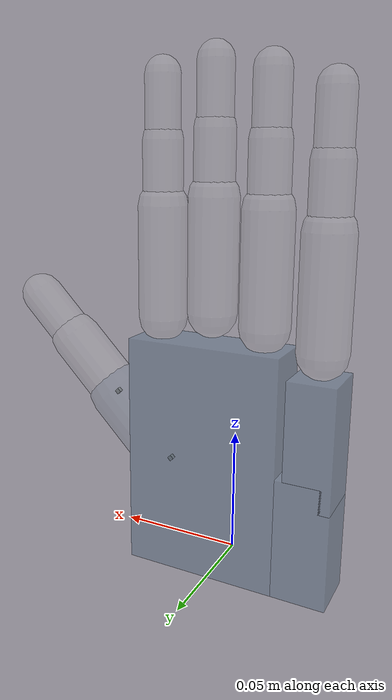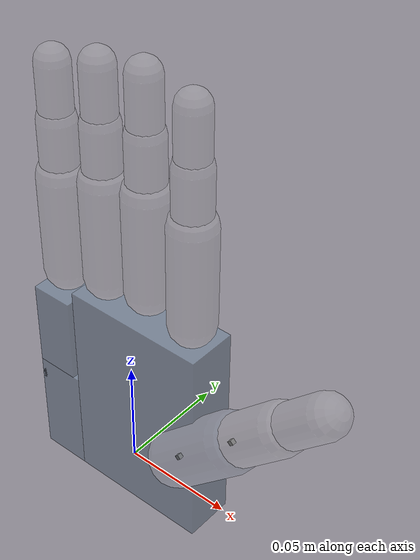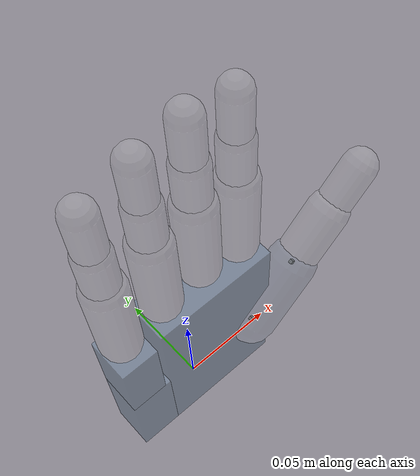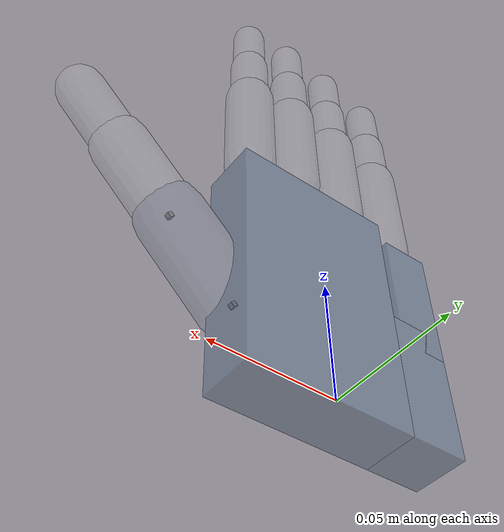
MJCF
<mujoco model="MuJoCo Model">
    <compiler angle="radian" meshdir="meshes " texturedir="textures" />
    <option apirate="200" iterations="20"/>
     <visual>
        <map force="0.1" fogend="5" />
    </visual>
    <default class="main">
        <default class="robot0:asset_class">
            <joint damping="0.2" frictionloss="0.01" />
            <geom friction="1 0.005 0.001" margin="0.0005" />
            <site rgba="0.4 0.9 0.4 1" />
            <position kp="2" kv="0.02"/>
        </default>
        <default class="robot0:D_Touch">
            <site size="0.009 0.004 0.013" group="4" type="box" rgba="0.8 0.8 0.8 0.15" />
        </default>
        <default class="robot0:DC_Hand">
            <geom conaffinity="0" group="1" material="robot0:MatColl" rgba="0.8 0.8 0.8 0.1"/>
        </default>
        <default class="robot0:free">
            <joint type="free" />
        </default>

      <default class="wrist">
        <joint damping="0.5"/>
        <default class="wrist_r_y">
          <joint axis="0 1 0" range="-3.14 3.14"/>
          <position kp="20" ctrlrange="-3.14 3.14" forcerange="-20 20"/>
        </default>
        <default class="wrist_r_x">
          <joint axis="1 0 0" range="-3.14 3.14"/>
          <position kp="20" ctrlrange="-3.14 3.14" forcerange="-20 20"/>
        </default>
        <default class="wrist_r_z">
          <joint axis="0 0 1" range="-3.14 3.14"/>
          <position kp="20" ctrlrange="-3.14 3.14" forcerange="-20 20"/>
        </default>
        <default class="wrist_t_x">
          <joint axis="1 0 0" range="-2 2" type = "slide" damping="1"/>
          <position kp="100" kv = "10" ctrlrange="-2 2" forcerange="-40 40"/>
        </default>
        <default class="wrist_t_y">
          <joint axis="0 1 0" range="-2 2" type = "slide" damping="1"/>
          <position kp="100" kv = "10" ctrlrange="-2 2" forcerange="-40 40"/>
        </default>
        <default class="wrist_t_z">
          <joint axis="0 0 1" range="-2 2" type = "slide" damping="0" />
          <position kp="250" kv = "25" ctrlrange="-2 2" forcerange="-30 30" />
        </default>
      </default>

      <default class="thumb">
        <default class="thbase">
          <joint axis="0 0 -1" range="-1.0472 1.0472"/>
          <position kp="0.4" ctrlrange="-1.0472 1.0472" forcerange="-3 3"/>
        </default>
        <default class="thproximal">
          <joint range="0 1.22173"/>
          <position ctrlrange="0 1.22173" forcerange="-2 2"/>
        </default>
        <default class="thhub">
          <joint range="-0.20944 0.20944"/>
          <position kp="0.5" ctrlrange="-0.20944 0.20944"/>
        </default>
        <default class="thmiddle">
          <joint axis="0 -1 0" range="-0.698132 0.698132"/>
          <position kp="1.5" ctrlrange="-0.698132 0.698132"/>
        </default>
        <default class="thdistal">
          <joint range="-0.261799 1.5708"/>
          <position ctrlrange="-0.261799 1.5708"/>
        </default>
      </default>

      <default class="metacarpal">
        <joint axis="0.573576 0 0.819152" range="0 0.785398"/>
        <position ctrlrange="0 0.785398"/>
      </default>
      <default class="knuckle">
        <joint axis="0 -1 0" range="-0.349066 0.349066"/>
        <position ctrlrange="-0.349066 0.349066"/>
      </default>
      <default class="proximal">
        <joint range="-0.261799 1.5708"/>
        <position ctrlrange="-0.261799 1.5708"/>
      </default>
      <default class="middle_distal">
        <joint range="0 1.5708"/>
        <position kp="0.5" ctrlrange="0 3.1415"/>
      </default>

    </default>
    <asset>
        <texture type="skybox" builtin="gradient" rgb1="0.44 0.85 0.56" rgb2="0.46 0.87 0.58" width="32" height="192" />
        <texture type="2d" name="robot0:texplane" builtin="checker" rgb1="0.2 0.3 0.4" rgb2="0.1 0.15 0.2" width="512" height="512" />
        <texture type="cube" name="robot0:texgeom" builtin="flat" mark="cross" rgb1="0.3 0.6 0.5" rgb2="0.3 0.6 0.5" width="127" height="762" />
        <material name="robot0:MatGnd" texture="robot0:texplane" texuniform="true" reflectance="0.5" />
        <material name="robot0:MatColl" specular="1" shininess="0.3" reflectance="0.5" rgba="0.4 0.5 0.6 0.5" />
        <material name="robot0:MatViz" specular="0.75" shininess="0.1" reflectance="0.5" rgba="0.93 0.93 0.93 0.5" />
        <material name="robot0:object" texture="robot0:texgeom" />
        <material name="floor_mat" specular="0" rgba="0.2 0.2 0.2 0" />
        <mesh name="robot0:forearm" file="forearm_electric.obj" />
        <mesh name="robot0:forearm_cvx" file="forearm_electric_cvx.obj" />
        <mesh name="robot0:wrist" file="wrist.obj" scale="0.001 0.001 0.001" />
        <mesh name="robot0:palm" file="palm.obj" scale="0.001 0.001 0.001" />
        <mesh name="robot0:knuckle" file="knuckle.obj" scale="0.001 0.001 0.001" />
        <mesh name="robot0:F3" file="F3.obj" scale="0.001 0.001 0.001" />
        <mesh name="robot0:F2" file="F2.obj" scale="0.001 0.001 0.001" />
        <mesh name="robot0:F1" file="F1.obj" scale="0.001 0.001 0.001" />
        <mesh name="robot0:lfmetacarpal" file="lfmetacarpal.obj" scale="0.001 0.001 0.001" />
        <mesh name="robot0:TH3_z" file="TH3_z.obj" scale="0.001 0.001 0.001" />
        <mesh name="robot0:TH2_z" file="TH2_z.obj" scale="0.001 0.001 0.001" />
        <mesh name="robot0:TH1_z" file="TH1_z.obj" scale="0.001 0.001 0.001" />
    </asset>
    <worldbody>
        <light name="light0" pos="0 1 4" dir="0 0 -1" directional="true" castshadow="false" ambient="0.2 0.2 0.2" diffuse="0.8 0.8 0.8" />
                    <body name="robot0:palm" gravcomp="1">
                        <inertial pos="0.006 0 0.036" quat="0.715833 0.0439898 0.0749825 0.692839" mass="0.3" diaginertia="0.001 0.001 0.001" />
                        <geom name="robot0:C_palm0" class="robot0:DC_Hand" size="0.032 0.0111 0.049" pos="0.011 0 0.038" type="box" rgba="0.4 0.5 0.6 0.5" />
                        <geom name="robot0:C_palm1" class="robot0:DC_Hand" size="0.011 0.0111 0.025" pos="-0.032 0 0.014" type="box" rgba="0.4 0.5 0.6 0.5" />
                        <joint name="ARRt_x" class="wrist_t_x"/>
                        <joint name="ARRt_y" class="wrist_t_y"/>
                        <joint name="ARRt_z" class="wrist_t_z" />
                        <joint name="ARRz" class="wrist_r_z"/>
                        <joint name="ARRy"  class="wrist_r_y"/>
                        <joint name="ARRx" class="wrist_r_x" />

                        <body name="robot0:ffknuckle" pos="0.033 0 0.095" gravcomp="1">
                            <inertial pos="0 0 0" quat="0.520062 0.854102 0.00600072 -0.00300036" mass="0.008" diaginertia="1e-05 1e-05 1e-05" />
                            <joint name="robot0:FFJ3" pos="0 0 0" axis="0 1 0" range="-0.349 0.349" user="1103" class="robot0:asset_class"/>
                            <body name="robot0:ffproximal" pos="0 0 0" gravcomp="1">
                                <inertial pos="0 0 0.023" quat="0.707095 -0.00400054 0.00400054 0.707095" mass="0.014" diaginertia="1e-05 1e-05 1e-05" />
                                <joint name="robot0:FFJ2" pos="0 0 0" axis="1 0 0" range="0 1.571" user="1102" class="robot0:asset_class"/>
                                <geom name="robot0:C_ffproximal" class="robot0:DC_Hand" size="0.01 0.0225" pos="0 0 0.0225" type="capsule" />
                                <body name="robot0:ffmiddle" pos="0 0 0.045" gravcomp="1">
                                    <inertial pos="0 0 0.011" quat="0.707107 0 0 0.707107" mass="0.012" diaginertia="1e-05 1e-05 1e-05" />
                                    <joint name="robot0:FFJ1" pos="0 0 0" axis="1 0 0" range="0 1.571" user="1101" class="robot0:asset_class"/>
                                    <geom name="robot0:C_ffmiddle" class="robot0:DC_Hand" size="0.00805 0.0125" pos="0 0 0.0125" type="capsule" />
                                    <body name="robot0:ffdistal" pos="0 0 0.025" gravcomp="1">
                                        <inertial pos="0 0 0.015" quat="0.7071 -0.00300043 0.00300043 0.7071" mass="0.01" diaginertia="1e-05 1e-05 1e-05" />
                                        <joint name="robot0:FFJ0" pos="0 0 0" axis="1 0 0" range="0 1.571" user="1100" class="robot0:asset_class"/>
                                        <geom name="robot0:C_ffdistal" class="robot0:DC_Hand" size="0.00705 0.012" pos="0 0 0.012" type="capsule" condim="4" />
                                        <site name="robot0:S_fftip" pos="0 0 0.026" group="3" />
                                        <site name="robot0:Tch_fftip" class="robot0:D_Touch" pos="0 -0.004 0.018" />
                                    </body>
                                </body>
                            </body>
                        </body>
                        <body name="robot0:mfknuckle" pos="0.011 0 0.099" gravcomp="1">
                            <inertial pos="0 0 0" quat="0.520062 0.854102 0.00600072 -0.00300036" mass="0.008" diaginertia="1e-05 1e-05 1e-05" />
                            <joint name="robot0:MFJ3" pos="0 0 0" axis="0 1 0" range="-0.349 0.349" user="1107" class="robot0:asset_class"/>
                            <body name="robot0:mfproximal" pos="0 0 0" gravcomp="1">
                                <inertial pos="0 0 0.023" quat="0.707095 -0.00400054 0.00400054 0.707095" mass="0.014" diaginertia="1e-05 1e-05 1e-05" />
                                <joint name="robot0:MFJ2" pos="0 0 0" axis="1 0 0" range="0 1.571" user="1106" class="robot0:asset_class"/>
                                <geom name="robot0:C_mfproximal" class="robot0:DC_Hand" size="0.01 0.0225" pos="0 0 0.0225" type="capsule" />
                                <body name="robot0:mfmiddle" pos="0 0 0.045" gravcomp="1">
                                    <inertial pos="0 0 0.012" quat="0.707107 0 0 0.707107" mass="0.012" diaginertia="1e-05 1e-05 1e-05" />
                                    <joint name="robot0:MFJ1" pos="0 0 0" axis="1 0 0" range="0 1.571" user="1105" class="robot0:asset_class"/>
                                    <geom name="robot0:C_mfmiddle" class="robot0:DC_Hand" size="0.00805 0.0125" pos="0 0 0.0125" type="capsule" />
                                    <body name="robot0:mfdistal" pos="0 0 0.025" gravcomp="1">
                                        <inertial pos="0 0 0.015" quat="0.7071 -0.00300043 0.00300043 0.7071" mass="0.01" diaginertia="1e-05 1e-05 1e-05" />
                                        <joint name="robot0:MFJ0" pos="0 0 0" axis="1 0 0" range="0 1.571" user="1104" class="robot0:asset_class"/>
                                        <geom name="robot0:C_mfdistal" class="robot0:DC_Hand" size="0.00705 0.012" pos="0 0 0.012" type="capsule" condim="4" />
                                        <site name="robot0:S_mftip" pos="0 0 0.026" group="3" />
                                        <site name="robot0:Tch_mftip" class="robot0:D_Touch" pos="0 -0.004 0.018" />
                                    </body>
                                </body>
                            </body>
                        </body>
                        <body name="robot0:rfknuckle" pos="-0.011 0 0.095" gravcomp="1" >
                            <inertial pos="0 0 0" quat="0.520062 0.854102 0.00600072 -0.00300036" mass="0.008" diaginertia="1e-05 1e-05 1e-05" />
                            <joint name="robot0:RFJ3" pos="0 0 0" axis="0 1 0" range="-0.349 0.349" user="1111" class="robot0:asset_class"/>
                            <body name="robot0:rfproximal" pos="0 0 0" gravcomp="1" >
                                <inertial pos="0 0 0.023" quat="0.707095 -0.00400054 0.00400054 0.707095" mass="0.014" diaginertia="1e-05 1e-05 1e-05" />
                                <joint name="robot0:RFJ2" pos="0 0 0" axis="1 0 0" range="0 1.571" user="1110" class="robot0:asset_class"/>
                                <geom name="robot0:C_rfproximal" class="robot0:DC_Hand" size="0.01 0.0225" pos="0 0 0.0225" type="capsule" />
                                <body name="robot0:rfmiddle" pos="0 0 0.045" gravcomp="1">
                                    <inertial pos="0 0 0.012" quat="0.707107 0 0 0.707107" mass="0.012" diaginertia="1e-05 1e-05 1e-05" />
                                    <joint name="robot0:RFJ1" pos="0 0 0" axis="1 0 0" range="0 1.571" user="1109" class="robot0:asset_class"/>
                                    <geom name="robot0:C_rfmiddle" class="robot0:DC_Hand" size="0.00805 0.0125" pos="0 0 0.0125" type="capsule" />
                                    <body name="robot0:rfdistal" pos="0 0 0.025" gravcomp="1">
                                        <inertial pos="0 0 0.015" quat="0.7071 -0.00300043 0.00300043 0.7071" mass="0.01" diaginertia="1e-05 1e-05 1e-05" />
                                        <joint name="robot0:RFJ0" pos="0 0 0" axis="1 0 0" range="0 1.571" user="1108" class="robot0:asset_class"/>
                                        <geom name="robot0:C_rfdistal" class="robot0:DC_Hand" size="0.00705 0.012" pos="0 0 0.012" type="capsule" condim="4" />
                                        <site name="robot0:S_rftip" pos="0 0 0.026" group="3" />
                                        <site name="robot0:Tch_rftip" class="robot0:D_Touch" pos="0 -0.004 0.018" />
                                    </body>
                                </body>
                            </body>
                        </body>
                        <body name="robot0:lfmetacarpal" pos="-0.017 0 0.044" gravcomp="1">
                            <inertial pos="-0.014 0.001 0.014" quat="0.709167 -0.0920216 -0.0630148 0.696164" mass="0.075" diaginertia="1e-05 1e-05 1e-05" />
                            <joint name="robot0:LFJ4" pos="0 0 0" axis="0.570977 0 0.820966" range="0 0.785" user="1116" class="robot0:asset_class"/>
                            <geom name="robot0:C_lfmetacarpal" class="robot0:DC_Hand" size="0.0095 0.0111 0.025" pos="-0.0165 0 0.01" type="box" rgba="0.4 0.5 0.6 0.5" />
                            <body name="robot0:lfknuckle" pos="-0.017 0 0.044" gravcomp="1" >
                                <inertial pos="0 0 0" quat="0.520062 0.854102 0.00600072 -0.00300036" mass="0.008" diaginertia="1e-05 1e-05 1e-05" />
                                <joint name="robot0:LFJ3" pos="0 0 0" axis="0 1 0" range="-0.349 0.349" user="1115" class="robot0:asset_class"/>
                                <body name="robot0:lfproximal" pos="0 0 0" gravcomp="1">
                                    <inertial pos="0 0 0.023" quat="0.707095 -0.00400054 0.00400054 0.707095" mass="0.014" diaginertia="1e-05 1e-05 1e-05" />
                                    <joint name="robot0:LFJ2" pos="0 0 0" axis="1 0 0" range="0 1.571" user="1114" class="robot0:asset_class"/>
                                    <geom name="robot0:C_lfproximal" class="robot0:DC_Hand" size="0.01 0.0225" pos="0 0 0.0225" type="capsule" />
                                    <body name="robot0:lfmiddle" pos="0 0 0.045" gravcomp="1">
                                        <inertial pos="0 0 0.012" quat="0.707107 0 0 0.707107" mass="0.012" diaginertia="1e-05 1e-05 1e-05" />
                                        <joint name="robot0:LFJ1" pos="0 0 0" axis="1 0 0" range="0 1.571" user="1113" class="robot0:asset_class"/>
                                        <geom name="robot0:C_lfmiddle" class="robot0:DC_Hand" size="0.00805 0.0125" pos="0 0 0.0125" type="capsule" />
                                        <body name="robot0:lfdistal" pos="0 0 0.025" gravcomp="1">
                                            <inertial pos="0 0 0.015" quat="0.7071 -0.00300043 0.00300043 0.7071" mass="0.01" diaginertia="1e-05 1e-05 1e-05" />
                                            <joint name="robot0:LFJ0" pos="0 0 0" axis="1 0 0" range="0 1.571" user="1112" class="robot0:asset_class"/>
                                            <geom name="robot0:C_lfdistal" class="robot0:DC_Hand" size="0.00705 0.012" pos="0 0 0.012" type="capsule" condim="4" />
                                            <site name="robot0:S_lftip" pos="0 0 0.026" group="3" />
                                            <site name="robot0:Tch_lftip" class="robot0:D_Touch" pos="0 -0.004 0.018" />
                                        </body>
                                    </body>
                                </body>
                            </body>
                        </body>
                        <body name="robot0:thbase" pos="0.034 -0.009 0.029" quat="0.923956 0 0.382499 0">
                            <inertial pos="0 0 0" mass="0.01" diaginertia="1e-05 1e-05 1e-05" />
                            <joint name="robot0:THJ4" pos="0 0 0" axis="0 0 -1" range="-1.047 1.047" user="1121" class="robot0:asset_class"/>
                            <geom name="robot0:V_thbase" size="0.001 0.001 0.001" type="box" group="1" />
                            <body name="robot0:thproximal" pos="0 0 0" gravcomp="1">
                                <inertial pos="0 0 0.017" quat="0.981604 0 0.000999597 0.190923" mass="0.016" diaginertia="1e-05 1e-05 1e-05" />
                                <joint name="robot0:THJ3" pos="0 0 0" axis="1 0 0" range="0 1.222" user="1120" class="robot0:asset_class"/>
                                <geom name="robot0:C_thproximal" class="robot0:DC_Hand" size="0.013 0.019" pos="0 0 0.019" type="capsule" rgba="0.4 0.5 0.6 0.1" />
                                <body name="robot0:thhub" pos="0 0 0.038" gravcomp="1">
                                    <inertial pos="0 0 0" mass="0.002" diaginertia="1e-05 1e-05 1e-05" />
                                    <joint name="robot0:THJ2" pos="0 0 0" axis="1 0 0" range="-0.209 0.209" user="1119" class="robot0:asset_class"/>
                                    <geom name="robot0:V_thhub" size="0.001 0.001 0.001" type="box" group="1" />
                                    <body name="robot0:thmiddle" pos="0 0 0" gravcomp="1">
                                        <inertial pos="0 0 0.016" quat="0.999971 -0.000999971 -0.00699979 0.00299991" mass="0.016" diaginertia="1e-05 1e-05 1e-05" />
                                        <joint name="robot0:THJ1" pos="0 0 0" axis="0 1 0" range="-0.524 0.524" user="1118" class="robot0:asset_class"/>
                                        <geom name="robot0:C_thmiddle" class="robot0:DC_Hand" size="0.011 0.016" pos="0 0 0.016" type="capsule" />
                                        <body name="robot0:thdistal" pos="0 0 0.032" gravcomp="1" >
                                            <inertial pos="0 0 0.016" quat="0.99887 -0.00499935 -0.0469939 0.00499935" mass="0.016" diaginertia="1e-05 1e-05 1e-05" />
                                            <joint name="robot0:THJ0" pos="0 0 0" axis="0 1 0" range="-1.571 0" user="1117" class="robot0:asset_class"/>
                                            <geom name="robot0:C_thdistal" class="robot0:DC_Hand" size="0.00918 0.013" pos="0 0 0.013" type="capsule" condim="4" />
                                            <site name="robot0:S_thtip" pos="0 0 0.0275" group="3" />
                                            <site name="robot0:Tch_thtip" class="robot0:D_Touch" pos="-0.005 0 0.02" size="0.005 0.011 0.016" />
                                        </body>
                                    </body>
                                </body>
                            </body>
                        </body>
                    </body>
    </worldbody>
    <contact>
        <pair geom1="robot0:C_palm0" geom2="robot0:C_thdistal" condim="1" />
        <pair geom1="robot0:C_ffproximal" geom2="robot0:C_mfproximal" condim="1" />
        <pair geom1="robot0:C_ffproximal" geom2="robot0:C_thdistal" condim="1" />
        <pair geom1="robot0:C_ffmiddle" geom2="robot0:C_thdistal" condim="1" />
        <pair geom1="robot0:C_ffdistal" geom2="robot0:C_mfdistal" condim="1" />
        <pair geom1="robot0:C_ffdistal" geom2="robot0:C_thdistal" condim="1" />
        <pair geom1="robot0:C_mfproximal" geom2="robot0:C_rfproximal" condim="1" />
        <pair geom1="robot0:C_mfproximal" geom2="robot0:C_thdistal" condim="1" />
        <pair geom1="robot0:C_mfdistal" geom2="robot0:C_rfdistal" condim="1" />
        <pair geom1="robot0:C_mfdistal" geom2="robot0:C_lfdistal" condim="1" />
        <pair geom1="robot0:C_mfdistal" geom2="robot0:C_thdistal" condim="1" />
        <pair geom1="robot0:C_rfproximal" geom2="robot0:C_lfproximal" condim="1" />
        <pair geom1="robot0:C_rfmiddle" geom2="robot0:C_lfmiddle" condim="1" />
        <pair geom1="robot0:C_rfmiddle" geom2="robot0:C_lfdistal" condim="1" />
        <pair geom1="robot0:C_rfdistal" geom2="robot0:C_lfmiddle" condim="1" />
        <pair geom1="robot0:C_rfdistal" geom2="robot0:C_lfdistal" condim="1" />
        <pair geom1="robot0:C_rfdistal" geom2="robot0:C_lfdistal" condim="1" />
        <pair geom1="robot0:C_rfdistal" geom2="robot0:C_thdistal" condim="1" />
        <pair geom1="robot0:C_lfdistal" geom2="robot0:C_thdistal" condim="1" />
    </contact>
    <actuator>
        <position name="WRJRx" joint="ARRx" class="wrist_r_x" />
        <position name="WRJRy" joint="ARRy" class="wrist_r_y" />
        <position name="WRJRz" joint="ARRz" class="wrist_r_z" />
        <position name="WRJTx" joint="ARRt_x" class="wrist_t_x" />
        <position name="WRJTy" joint="ARRt_y" class="wrist_t_y" />
        <position name="WRJTz" joint="ARRt_z" class="wrist_t_z" />
        <position name="robot0:A_FFJ3" class="robot0:asset_class" joint="robot0:FFJ3" ctrlrange="-0.349 0.349" forcerange="-0.9 0.9"  user="2004 0 0 0 0 0 0 0 0 0 0 0 0 0 0 0" />
        <position name="robot0:A_FFJ2" class="robot0:asset_class" joint="robot0:FFJ2" ctrlrange="0 1.571" forcerange="-0.9 0.9"   user="2002 0 0 0 0 0 0 0 0 0 0 0 0 0 0 0" />
        <position name="robot0:A_FFJ1" class="robot0:asset_class" joint="robot0:FFJ1" ctrlrange="0 1.571" forcerange="-0.7245 0.7245"   user="2000 0 0 0 0 0 0 0 0 0 0 0 0 0 0 0" />
        <position name="robot0:A_FFJ0" class="robot0:asset_class" joint="robot0:FFJ0" ctrlrange="0 1.571" forcerange="-0.7245 0.7245"  />
        <position name="robot0:A_MFJ3" class="robot0:asset_class" joint="robot0:MFJ3" ctrlrange="-0.349 0.349" forcerange="-0.9 0.9"  user="2010 0 0 0 0 0 0 0 0 0 0 0 0 0 0 0" />
        <position name="robot0:A_MFJ2" class="robot0:asset_class" joint="robot0:MFJ2" ctrlrange="0 1.571" forcerange="-0.9 0.9"   user="2008 0 0 0 0 0 0 0 0 0 0 0 0 0 0 0" />
        <position name="robot0:A_MFJ1" class="robot0:asset_class" joint="robot0:MFJ1" ctrlrange="0 1.571" forcerange="-0.7245 0.7245"   user="2006 0 0 0 0 0 0 0 0 0 0 0 0 0 0 0" />
        <position name="robot0:A_MFJ0" class="robot0:asset_class" joint="robot0:MFJ0" ctrlrange="0 1.571" forcerange="-0.7245 0.7245" />
        <position name="robot0:A_RFJ3" class="robot0:asset_class" joint="robot0:RFJ3" ctrlrange="-0.349 0.349" forcerange="-0.9 0.9"   user="2016 0 0 0 0 0 0 0 0 0 0 0 0 0 0 0" />
        <position name="robot0:A_RFJ2" class="robot0:asset_class" joint="robot0:RFJ2" ctrlrange="0 1.571" forcerange="-0.9 0.9"   user="2014 0 0 0 0 0 0 0 0 0 0 0 0 0 0 0" />
        <position name="robot0:A_RFJ1" class="robot0:asset_class" joint="robot0:RFJ1" ctrlrange="0 1.571" forcerange="-0.7245 0.7245"   user="2012 0 0 0 0 0 0 0 0 0 0 0 0 0 0 0" />
        <position name="robot0:A_RFJ0" class="robot0:asset_class" joint="robot0:RFJ0" ctrlrange="0 1.571" forcerange="-0.7245 0.7245" />
        <position name="robot0:A_LFJ4" class="robot0:asset_class" joint="robot0:LFJ4" ctrlrange="0 0.785" forcerange="-0.9 0.9"   user="2024 0 0 0 0 0 0 0 0 0 0 0 0 0 0 0" />
        <position name="robot0:A_LFJ3" class="robot0:asset_class" joint="robot0:LFJ3" ctrlrange="-0.349 0.349" forcerange="-0.9 0.9"   user="2022 0 0 0 0 0 0 0 0 0 0 0 0 0 0 0" />
        <position name="robot0:A_LFJ2" class="robot0:asset_class" joint="robot0:LFJ2" ctrlrange="0 1.571" forcerange="-0.9 0.9"    user="2020 0 0 0 0 0 0 0 0 0 0 0 0 0 0 0" />
        <position name="robot0:A_LFJ1" class="robot0:asset_class" joint="robot0:LFJ1" ctrlrange="0 1.571" forcerange="-0.7245 0.7245"   user="2018 0 0 0 0 0 0 0 0 0 0 0 0 0 0 0" />
        <position name="robot0:A_LFJ0" class="robot0:asset_class" joint="robot0:LFJ0" ctrlrange="0 1.571" forcerange="-0.7245 0.7245"  />
        <position name="robot0:A_THJ4" class="robot0:asset_class" joint="robot0:THJ4" ctrlrange="-1.047 1.047" forcerange="-2.3722 2.3722"   user="2034 0 0 0 0 0 0 0 0 0 0 0 0 0 0 0" />
        <position name="robot0:A_THJ3" class="robot0:asset_class" joint="robot0:THJ3" ctrlrange="0 1.222" forcerange="-1.45 1.45"   user="2032 0 0 0 0 0 0 0 0 0 0 0 0 0 0 0" />
        <position name="robot0:A_THJ2" class="robot0:asset_class" joint="robot0:THJ2" ctrlrange="-0.209 0.209" forcerange="-0.99 0.99"   user="2030 0 0 0 0 0 0 0 0 0 0 0 0 0 0 0" />
        <position name="robot0:A_THJ1" class="robot0:asset_class" joint="robot0:THJ1" ctrlrange="-0.524 0.524" forcerange="-0.99 0.99"   user="2028 0 0 0 0 0 0 0 0 0 0 0 0 0 0 0" />
        <position name="robot0:A_THJ0" class="robot0:asset_class" joint="robot0:THJ0" ctrlrange="-1.571 0" forcerange="-0.81 0.81"   user="2026 0 0 0 0 0 0 0 0 0 0 0 0 0 0 0" />
    </actuator>
    <sensor>
        <actuatorfrc name="force_z" actuator="WRJTz" />
        <jointactuatorfrc name="force_zjs" joint="ARRt_z" />
        <touch site="robot0:Tch_fftip" name="robot0:ST_Tch_fftip" />
        <touch site="robot0:Tch_mftip" name="robot0:ST_Tch_mftip" />
        <touch site="robot0:Tch_rftip" name="robot0:ST_Tch_rftip" />
        <touch site="robot0:Tch_lftip" name="robot0:ST_Tch_lftip" />
        <touch site="robot0:Tch_thtip" name="robot0:ST_Tch_thtip" />
    </sensor>
</mujoco>
